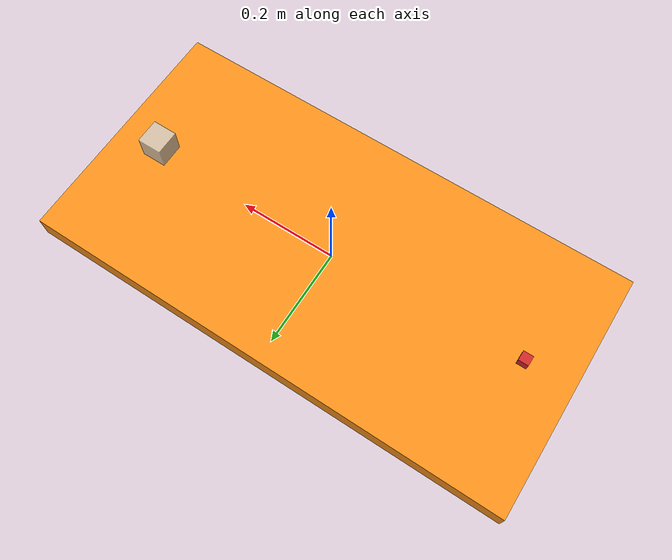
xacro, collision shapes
<?xml version='1.0'?>

<robot name="robot" xmlns:xacro="http://www.ros.org/wiki/xacro">

  <xacro:property name="cameraSize" value="0.05"/>
  <xacro:property name="cameraMass" value="0.1"/>
  <xacro:include filename="$(find mybot_description)/urdf/mybot.gazebo" />
  <xacro:include filename="$(find mybot_description)/urdf/materials.xacro" />
  <xacro:include filename="$(find mybot_description)/urdf/macros.xacro" />
  <link name='base_link'>
    <pose>0 0 0.1 0 0 0</pose>

    <inertial>
      <mass value="15.0"/>
      <origin xyz="0 0 0" rpy=" 0 0 0"/>
      <inertia
          ixx="0.1" ixy="0" ixz="0"
          iyy="0.1" iyz="0"
          izz="0.1"
      />
    </inertial>

    <collision name='collision'>
      <geometry>
        <box size="1 .5 .05"/>
      </geometry>
    </collision>

    <visual name='chassis_visual'>
      <origin xyz="0 0 0" rpy=" 0 0 0"/>
      <geometry>
        <box size="1 .5 .05"/>
      </geometry>
    </visual>
 </link>

<link name="zed_camera_center">
    <collision>
      <origin xyz="0 0 0" rpy="0 0 0"/>
      <geometry>
        <box size="${cameraSize} ${cameraSize} ${cameraSize}"/>
      </geometry>
    </collision>
        <visual>
            <origin xyz="0 0 0" rpy="0 0 0"/>
            <geometry>
                <mesh filename="package://zed_wrapper/urdf/ZED.stl" />
            </geometry>
            <material name="light_grey">
                <color rgba="0.8 0.8 0.8 0.8"/>
            </material>
        </visual>
    </link>

<!-- Left Camera -->

    <joint name="zed_left_camera_joint" type="fixed">
        <parent link="zed_camera_center"/>
        <child link="zed_left_camera_frame"/>
        <origin xyz="0 0.06 0" rpy="0 0 0" />
    </joint>

    <link name="zed_left_camera_frame" />

    <joint name="zed_left_camera_optical_joint" type="fixed">
        <origin xyz="0 0 0" rpy="-1.57079632679 0.0 -1.57079632679"/>
        <parent link="zed_left_camera_frame"/>
        <child link="zed_left_camera_optical_frame"/>
    </joint>

    <link name="zed_left_camera_optical_frame"/>

<!-- Right Camera -->

    <joint name="zed_right_camera_joint" type="fixed">
        <parent link="zed_camera_center"/>
        <child link="zed_right_camera_frame"/>
        <origin xyz="0 -0.06 0" rpy="0 0 0" />
    </joint>

    <link name="zed_right_camera_frame" />

    <joint name="zed_right_camera_optical_joint" type="fixed">
        <origin xyz="0 0 0" rpy="-1.57079632679 0.0 -1.57079632679"/>
        <parent link="zed_right_camera_frame"/>
        <child link="zed_right_camera_optical_frame"/>
    </joint>

    <link name="zed_right_camera_optical_frame"/>

 <joint name="camera_joint" type="fixed">
    <axis xyz="0 1 0" />
    <origin xyz=".4 0 .05" rpy="0 0 0"/>
    <parent link="base_link"/>
    <child link="zed_camera_center"/>
  </joint>
<link name="imu_sensor_link">
        <collision>
            <origin xyz="0 0 0" rpy="0 0 0"/>
            <geometry>
                <box size="0.02 0.02 0.02"/>
            </geometry>
        </collision>
        <visual>
            <origin xyz="0 0 0" rpy="0 0 0"/>
            <geometry>
                <box size="0.02 0.02 0.02"/>
            </geometry>
            <material name="iRobot/Red"/>
        </visual>
        <inertial>
            <mass value="0.001" />
            <origin xyz="0 0 0" rpy="0 0 0"/>
            <inertia ixx="0.00000015" ixy="0" ixz="0" iyy="0.00000015" iyz="0" izz="0.00000015" />
        </inertial>
    </link>

 <joint type="fixed" name="imu_sensor_joint">
    <origin xyz="-.4 0 .05" rpy="0 0 0"/>
    <child link="imu_sensor_link"/>
    <parent link="base_link"/>
    <axis xyz="0 0 1" />
 </joint>

</robot>
